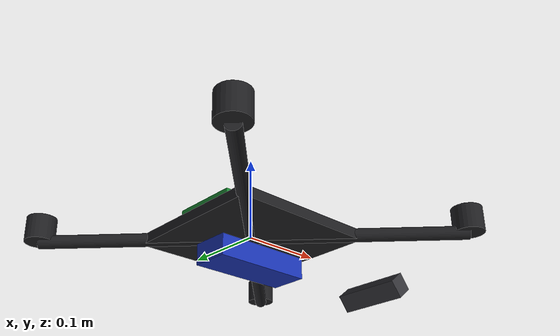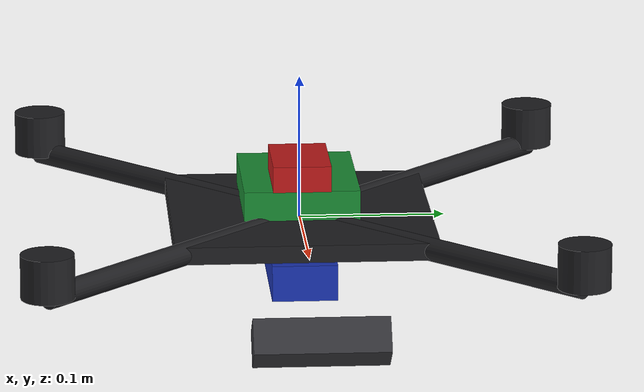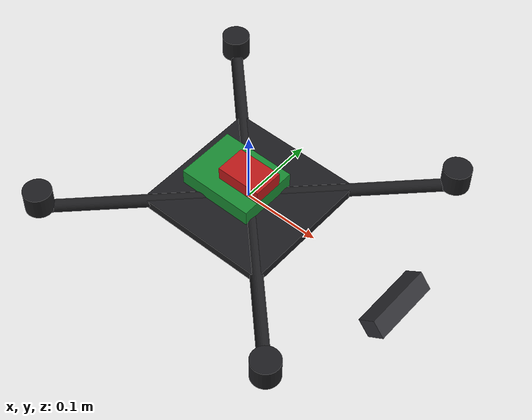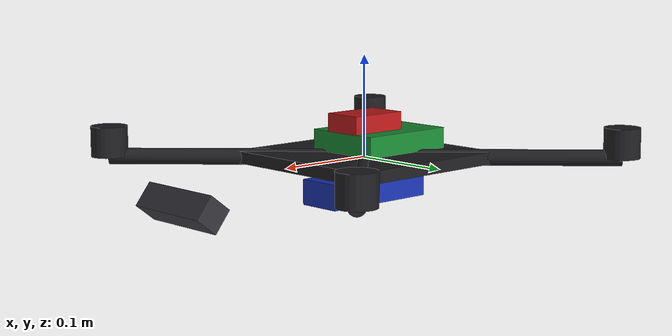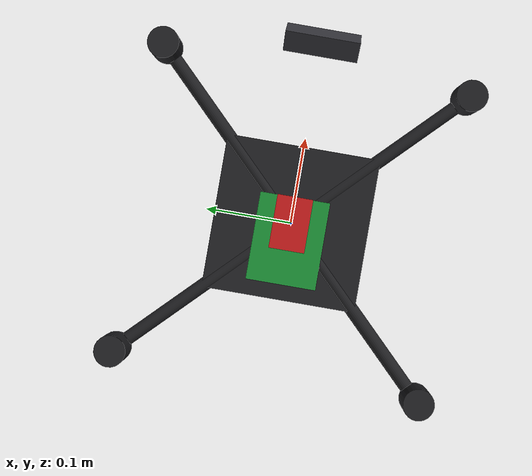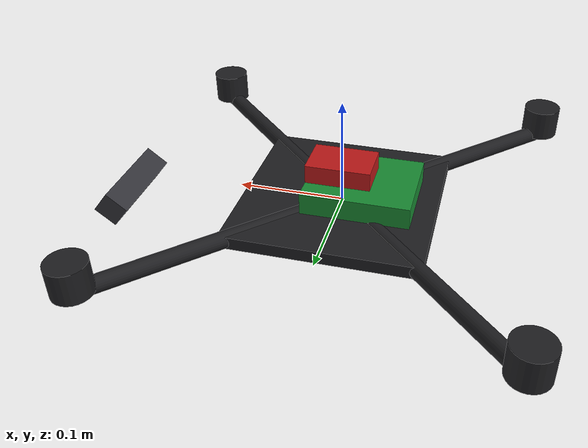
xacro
<?xml version="1.0"?>
<robot name="slam_drone" xmlns:xacro="http://www.ros.org/wiki/xacro">

  <!-- ===================== single source of truth ===================== -->
  <xacro:property name="body_len"   value="0.18"/>   <!-- central electronics stack X -->
  <xacro:property name="body_wid"   value="0.18"/>   <!-- central electronics stack Y -->
  <xacro:property name="deck_th"    value="0.012"/>  <!-- a layer/plate thickness -->
  <xacro:property name="arm_len"    value="0.25"/>   <!-- motor radius from center (S500 ~500mm wheelbase) -->
  <xacro:property name="arm_rad"    value="0.008"/>
  <xacro:property name="motor_rad"  value="0.018"/>
  <xacro:property name="motor_h"    value="0.03"/>

  <!-- camera boom / mount: ahead of frame, tilted down -->
  <xacro:property name="cam_fwd"    value="0.22"/>   <!-- forward offset of camera from base_link -->
  <xacro:property name="cam_up"     value="-0.02"/>  <!-- slightly below frame center -->
  <xacro:property name="cam_pitch"  value="0.9076"/> <!-- +52 deg about Y => looks ~52 deg DOWN (sees ground at 2-4 m alt; 15 deg was too shallow -> ground beyond depth range -> VO quality=0) -->

  <!-- ===================== materials ===================== -->
  <material name="carbon">  <color rgba="0.12 0.12 0.13 1.0"/></material>
  <material name="red_fc">  <color rgba="0.75 0.10 0.10 1.0"/></material>
  <material name="green_jp"><color rgba="0.10 0.55 0.20 1.0"/></material>
  <material name="blue_bat"><color rgba="0.10 0.20 0.70 1.0"/></material>
  <material name="cam_grey"><color rgba="0.20 0.20 0.22 1.0"/></material>

  <!-- ===================== helper macros ===================== -->
  <xacro:macro name="dummy_inertial">
    <inertial>
      <mass value="0.05"/>
      <inertia ixx="1e-4" ixy="0" ixz="0" iyy="1e-4" iyz="0" izz="1e-4"/>
    </inertial>
  </xacro:macro>

  <xacro:macro name="arm" params="name angle">
    <link name="${name}">
      <xacro:dummy_inertial/>
      <visual>
        <origin xyz="${arm_len/2} 0 0" rpy="0 1.5708 0"/>
        <geometry><cylinder radius="${arm_rad}" length="${arm_len}"/></geometry>
        <material name="carbon"/>
      </visual>
    </link>
    <joint name="${name}_joint" type="fixed">
      <parent link="base_link"/>
      <child link="${name}"/>
      <origin xyz="0 0 0" rpy="0 0 ${angle}"/>
    </joint>
    <!-- motor at arm tip -->
    <link name="${name}_motor">
      <xacro:dummy_inertial/>
      <visual>
        <origin xyz="0 0 0" rpy="0 0 0"/>
        <geometry><cylinder radius="${motor_rad}" length="${motor_h}"/></geometry>
        <material name="carbon"/>
      </visual>
    </link>
    <joint name="${name}_motor_joint" type="fixed">
      <parent link="${name}"/>
      <child link="${name}_motor"/>
      <origin xyz="${arm_len} 0 ${motor_h/2}" rpy="0 0 0"/>
    </joint>
  </xacro:macro>

  <!-- ===================== base / electronics stack ===================== -->
  <link name="base_link">
    <xacro:dummy_inertial/>
    <!-- middle layer: central deck (Jetson + PDB area) -->
    <visual>
      <origin xyz="0 0 0" rpy="0 0 0"/>
      <geometry><box size="${body_len} ${body_wid} ${deck_th}"/></geometry>
      <material name="carbon"/>
    </visual>
  </link>

  <!-- TOP LAYER: Pixhawk 6C Mini (on vibration dampers, abstracted) -->
  <link name="pixhawk">
    <xacro:dummy_inertial/>
    <visual>
      <origin xyz="0 0 0" rpy="0 0 0"/>
      <geometry><box size="0.06 0.04 0.018"/></geometry>
      <material name="red_fc"/>
    </visual>
  </link>
  <joint name="pixhawk_joint" type="fixed">
    <parent link="base_link"/><child link="pixhawk"/>
    <origin xyz="0 0 0.035" rpy="0 0 0"/>
  </joint>

  <!-- MIDDLE LAYER: Jetson companion computer -->
  <link name="jetson">
    <xacro:dummy_inertial/>
    <visual>
      <origin xyz="0 0 0" rpy="0 0 0"/>
      <geometry><box size="0.10 0.08 0.025"/></geometry>
      <material name="green_jp"/>
    </visual>
  </link>
  <joint name="jetson_joint" type="fixed">
    <parent link="base_link"/><child link="jetson"/>
    <origin xyz="-0.02 0 0.014" rpy="0 0 0"/>
  </joint>

  <!-- BOTTOM LAYER: battery mounted low (low CG) -->
  <link name="battery">
    <xacro:dummy_inertial/>
    <visual>
      <origin xyz="0 0 0" rpy="0 0 0"/>
      <geometry><box size="0.12 0.045 0.025"/></geometry>
      <material name="blue_bat"/>
    </visual>
  </link>
  <joint name="battery_joint" type="fixed">
    <parent link="base_link"/><child link="battery"/>
    <origin xyz="0 0 -0.03" rpy="0 0 0"/>
  </joint>

  <!-- arms + motors (X config) -->
  <xacro:arm name="arm_fr" angle="0.7854"/>
  <xacro:arm name="arm_fl" angle="2.3562"/>
  <xacro:arm name="arm_bl" angle="3.9270"/>
  <xacro:arm name="arm_br" angle="5.4978"/>

  <!-- ===================== FRONT SENSOR: RealSense on boom ===================== -->
  <link name="camera_link">
    <xacro:dummy_inertial/>
    <visual>
      <origin xyz="0 0 0" rpy="0 0 0"/>
      <geometry><box size="0.025 0.090 0.025"/></geometry>  <!-- RealSense D435-ish bar -->
      <material name="cam_grey"/>
    </visual>
  </link>
  <joint name="camera_joint" type="fixed">
    <parent link="base_link"/><child link="camera_link"/>
    <origin xyz="${cam_fwd} 0 ${cam_up}" rpy="0 ${cam_pitch} 0"/>
  </joint>

  <!-- optical frame: REP-103 (z fwd, x right, y down). Matches RealSense depth optical frame. -->
  <link name="camera_depth_optical_frame"/>
  <joint name="camera_depth_optical_joint" type="fixed">
    <parent link="camera_link"/><child link="camera_depth_optical_frame"/>
    <origin xyz="0 0 0" rpy="-1.5708 0 -1.5708"/>
  </joint>

</robot>
